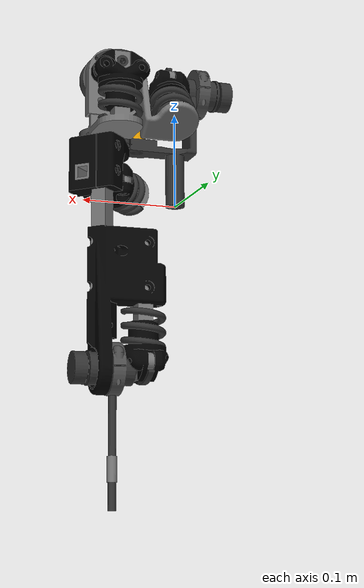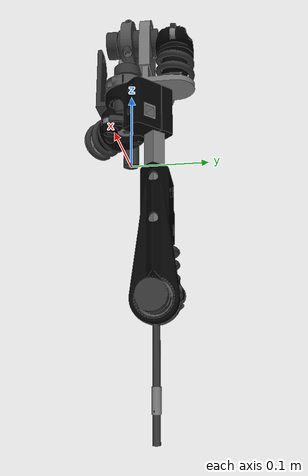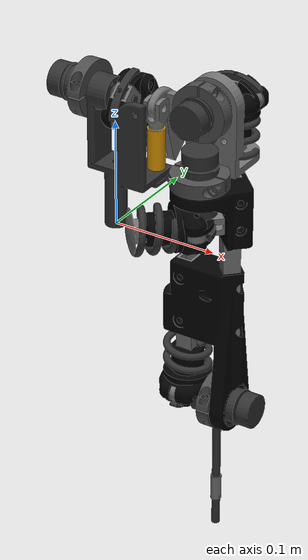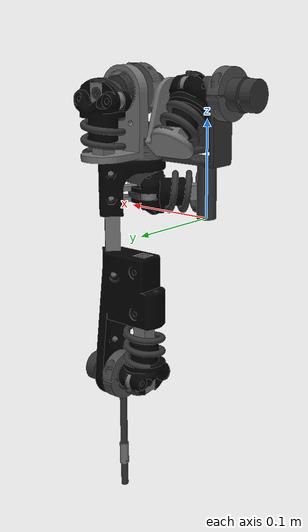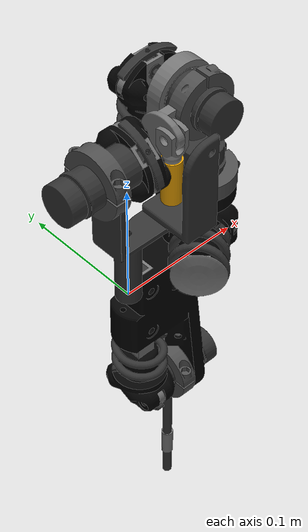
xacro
<?xml version="1.0"?>
<!-- Robot Reference Platform - Series Elastic Actuator Arm -->
<robot name="r2p_sea_arm" xmlns:xacro="http://www.ros.org/wiki/xacro">

  <!-- Constants for robot dimensions -->
  <xacro:property name="width" value="0.1" />   <!-- Beams are square in length and width -->
  <xacro:property name="height1" value="2" />   <!-- Link 1 -->
  <xacro:property name="height2" value="1" />   <!-- Link 2 -->
  <xacro:property name="height3" value="1" />   <!-- Link 3 -->
  <xacro:property name="axle_offset" value="0.05" /> <!-- Space between joint and end of beam -->
  <xacro:property name="damp" value="0.7" />    <!-- damping coefficient -->

  <!-- Base Link -->
  <link name="base_link">
    <visual>
      <origin xyz="0 0 0" rpy="0 0 0"/>
      <geometry>
	    <mesh filename="package://r2p_sea_arm_description/meshes/r2p_sea_arm_base.dae"/>
      </geometry>
    </visual>

    <collision>
      <origin xyz="0 0 0" rpy="0 0 0"/>
      <geometry>
	    <mesh filename="package://r2p_sea_arm_description/meshes/r2p_sea_arm_base_collision.dae"/>
      </geometry>
    </collision>

    <inertial>
      <origin xyz="0 0 0" rpy="0 0 0"/>
      <mass value="1"/>
      <inertia
	  ixx="1.0" ixy="0.0" ixz="0.0"
	  iyy="1.0" iyz="0.0"
	  izz="1.0"/>
    </inertial>
  </link>

  <!-- Joint between Base Link and Shoulder Pitch Link -->
  <joint name="joint_base_shoulder_pitch" type="revolute">
    <parent link="base_link"/>
    <child link="shoulder_pitch_link"/>
    <origin xyz="0.011 0 0.126" rpy="0 0 0"/>
    <axis xyz="1 0 0"/>
    <dynamics damping="${damp}"/>
    <limit effort="100.0" velocity="0.5" lower="-0.19" upper="3.0" />
  </joint>

  <!-- Shoulder Pitch Link -->
  <link name="shoulder_pitch_link">
    <visual>
      <origin xyz="0 0 0" rpy="0 0 0"/>
      <geometry>
	    <mesh filename="package://r2p_sea_arm_description/meshes/r2p_sea_shoulder_pitch.dae"/>
      </geometry>
    </visual>

    <collision>
      <origin xyz="0 0 0" rpy="0 0 0"/>
      <geometry>
	    <mesh filename="package://r2p_sea_arm_description/meshes/r2p_sea_shoulder_pitch_collision.dae"/>
      </geometry>
    </collision>

    <inertial>
      <origin xyz="0 0 0" rpy="0 0 0"/>
      <mass value="1"/>
      <inertia
	  ixx="1.0" ixy="0.0" ixz="0.0"
	  iyy="1.0" iyz="0.0"
	  izz="1.0"/>
    </inertial>
  </link>

  <!-- Joint between Shoulder Pitch Link and Shoulder Yaw Link -->
  <joint name="joint_shoulder_pitch_yaw" type="revolute">
    <parent link="shoulder_pitch_link"/>
    <child link="shoulder_yaw_link"/>
    <origin xyz="0.069 0.066 0" rpy="0 0 0"/>
    <axis xyz="0 1 0"/>
    <dynamics damping="${damp}"/>
    <limit effort="100.0" velocity="0.5" lower="-3.14" upper="0" />
  </joint>

  <!-- Shoulder Yaw Link -->
  <link name="shoulder_yaw_link">
    <visual>
      <origin xyz="0 0 0" rpy="0 0 0"/>
      <geometry>
	    <mesh filename="package://r2p_sea_arm_description/meshes/r2p_sea_shoulder_yaw.dae"/>
      </geometry>
    </visual>

    <collision>
      <origin xyz="0 0 0" rpy="0 0 0"/>
      <geometry>
	    <mesh filename="package://r2p_sea_arm_description/meshes/r2p_sea_shoulder_yaw_collision.dae"/>
      </geometry>
    </collision>

    <inertial>
      <origin xyz="0 0 0" rpy="0 0 0"/>
      <mass value="1"/>
      <inertia
	  ixx="1.0" ixy="0.0" ixz="0.0"
	  iyy="1.0" iyz="0.0"
	  izz="1.0"/>
    </inertial>
  </link>

  <!-- Joint between Shoulder Yaw Link and Upper Arm Link -->
  <joint name="joint_shoulder_yaw_upper_arm" type="revolute">
    <parent link="shoulder_yaw_link"/>
    <child link="upper_arm_link"/>
    <origin xyz="0 -0.057 -0.108" rpy="0 0 0.785"/>
    <axis xyz="0 0 1"/>
    <dynamics damping="${damp}"/>
    <limit effort="100.0" velocity="0.5" lower="-1.57" upper="1.57" />
  </joint>

  <!-- Upper Arm Link -->
  <link name="upper_arm_link">
    <visual>
      <origin xyz="0 0 0" rpy="0 0 0"/>
      <geometry>
	    <mesh filename="package://r2p_sea_arm_description/meshes/r2p_sea_upper_arm.dae"/>
      </geometry>
    </visual>

    <collision>
      <origin xyz="0 0 0" rpy="0 0 0"/>
      <geometry>
	    <mesh filename="package://r2p_sea_arm_description/meshes/r2p_sea_upper_arm_collision.dae"/>
      </geometry>
    </collision>

    <inertial>
      <origin xyz="0 0 0" rpy="0 0 0"/>
      <mass value="1"/>
      <inertia
	  ixx="1.0" ixy="0.0" ixz="0.0"
	  iyy="1.0" iyz="0.0"
	  izz="1.0"/>
    </inertial>
  </link>

  <!-- Joint between Upper Arm Link and Forearm Link -->
  <joint name="joint_upper_arm_forearm" type="revolute">
    <parent link="upper_arm_link"/>
    <child link="forearm_link"/>
    <origin xyz="0.024 0.024 -0.197" rpy="0 0 0.785"/>
    <axis xyz="0 1 0"/>
    <dynamics damping="${damp}"/>
    <limit effort="100.0" velocity="0.5" lower="-2.6" upper="0" />
  </joint>

  <!-- Forearm Link -->
  <link name="forearm_link">
    <visual>
      <origin xyz="0 0 0" rpy="0 0 0"/>
      <geometry>
	    <mesh filename="package://r2p_sea_arm_description/meshes/r2p_sea_forearm.dae"/>
      </geometry>
    </visual>

    <collision>
      <origin xyz="0 0 0" rpy="0 0 0"/>
      <geometry>
	    <mesh filename="package://r2p_sea_arm_description/meshes/r2p_sea_forearm_collision.dae"/>
      </geometry>
    </collision>

    <inertial>
      <origin xyz="0 0 0" rpy="0 0 0"/>
      <mass value="1"/>
      <inertia
	  ixx="1.0" ixy="0.0" ixz="0.0"
	  iyy="1.0" iyz="0.0"
	  izz="1.0"/>
    </inertial>
  </link>

</robot>
